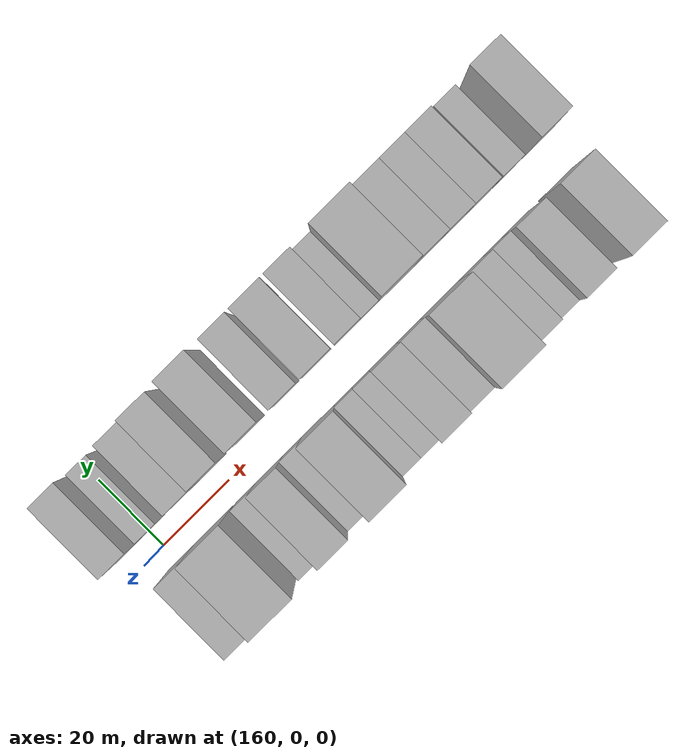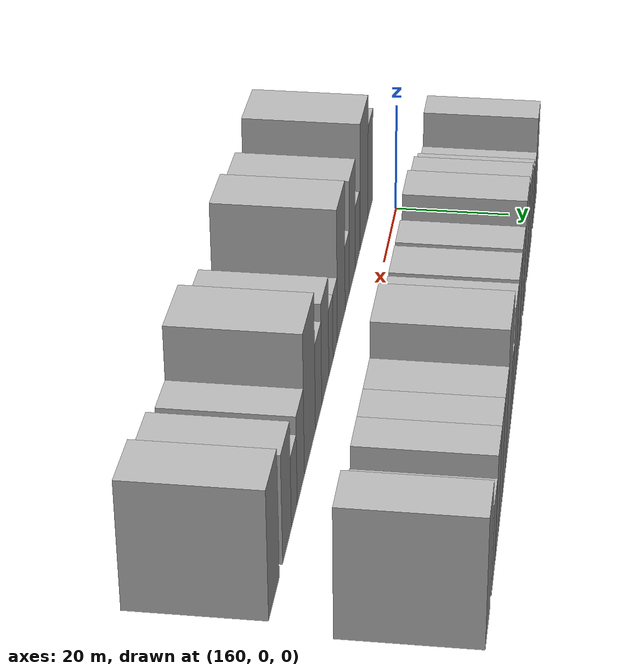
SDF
<sdf version="1.6">
 <world name="default">
  <model name="building_14">
   <static>1</static>
   <pose>154.4987 14.5000 0 0.000000 0.000000 1.570796</pose>
   <link name="link">
    <pose>0 0 9.00 0 0 0</pose>
    <collision name="collision"><geometry><box><size>20.0000 7.2774 18.0000</size></box></geometry></collision>
    <visual name="visual">
     <cast_shadows>0</cast_shadows>
     <geometry><box><size>20.0000 7.2774 18.0000</size></box></geometry>
     <material>
      <script>
       <uri>model://HANNAS_wall/materials/scripts</uri>
       <uri>model://HANNAS_wall/materials/textures</uri>
       <name>vrc/HANNAS_wall</name>
      </script>
     </material>
    </visual>
   </link>
  </model>
  <model name="building_15">
   <static>1</static>
   <pose>162.0869 14.5000 0 0.000000 0.000000 1.570796</pose>
   <link name="link">
    <pose>0 0 6.00 0 0 0</pose>
    <collision name="collision"><geometry><box><size>20.0000 5.8990 12.0000</size></box></geometry></collision>
    <visual name="visual">
     <cast_shadows>0</cast_shadows>
     <geometry><box><size>20.0000 5.8990 12.0000</size></box></geometry>
     <material>
      <script>
       <uri>model://HANNAS_wall/materials/scripts</uri>
       <uri>model://HANNAS_wall/materials/textures</uri>
       <name>vrc/HANNAS_wall</name>
      </script>
     </material>
    </visual>
   </link>
  </model>
  <model name="building_16">
   <static>1</static>
   <pose>171.7738 14.5000 0 0.000000 0.000000 1.570796</pose>
   <link name="link">
    <pose>0 0 7.50 0 0 0</pose>
    <collision name="collision"><geometry><box><size>20.0000 7.4748 15.0000</size></box></geometry></collision>
    <visual name="visual">
     <cast_shadows>0</cast_shadows>
     <geometry><box><size>20.0000 7.4748 15.0000</size></box></geometry>
     <material>
      <script>
       <uri>model://HANNAS_wall/materials/scripts</uri>
       <uri>model://HANNAS_wall/materials/textures</uri>
       <name>vrc/HANNAS_wall</name>
      </script>
     </material>
    </visual>
   </link>
  </model>
  <model name="building_17">
   <static>1</static>
   <pose>179.6057 14.5000 0 0.000000 0.000000 1.570796</pose>
   <link name="link">
    <pose>0 0 9.00 0 0 0</pose>
    <collision name="collision"><geometry><box><size>20.0000 8.1891 18.0000</size></box></geometry></collision>
    <visual name="visual">
     <cast_shadows>0</cast_shadows>
     <geometry><box><size>20.0000 8.1891 18.0000</size></box></geometry>
     <material>
      <script>
       <uri>model://HANNAS_wall/materials/scripts</uri>
       <uri>model://HANNAS_wall/materials/textures</uri>
       <name>vrc/HANNAS_wall</name>
      </script>
     </material>
    </visual>
   </link>
  </model>
  <model name="building_18">
   <static>1</static>
   <pose>191.0919 14.5000 0 0.000000 0.000000 1.570796</pose>
   <link name="link">
    <pose>0 0 10.50 0 0 0</pose>
    <collision name="collision"><geometry><box><size>20.0000 8.7832 21.0000</size></box></geometry></collision>
    <visual name="visual">
     <cast_shadows>0</cast_shadows>
     <geometry><box><size>20.0000 8.7832 21.0000</size></box></geometry>
     <material>
      <script>
       <uri>model://HANNAS_wall/materials/scripts</uri>
       <uri>model://HANNAS_wall/materials/textures</uri>
       <name>vrc/HANNAS_wall</name>
      </script>
     </material>
    </visual>
   </link>
  </model>
  <model name="building_19">
   <static>1</static>
   <pose>202.3033 14.5000 0 0.000000 0.000000 1.570796</pose>
   <link name="link">
    <pose>0 0 9.00 0 0 0</pose>
    <collision name="collision"><geometry><box><size>20.0000 7.6396 18.0000</size></box></geometry></collision>
    <visual name="visual">
     <cast_shadows>0</cast_shadows>
     <geometry><box><size>20.0000 7.6396 18.0000</size></box></geometry>
     <material>
      <script>
       <uri>model://HANNAS_wall/materials/scripts</uri>
       <uri>model://HANNAS_wall/materials/textures</uri>
       <name>vrc/HANNAS_wall</name>
      </script>
     </material>
    </visual>
   </link>
  </model>
  <model name="building_20">
   <static>1</static>
   <pose>211.5195 14.5000 0 0.000000 0.000000 1.570796</pose>
   <link name="link">
    <pose>0 0 9.00 0 0 0</pose>
    <collision name="collision"><geometry><box><size>20.0000 8.7927 18.0000</size></box></geometry></collision>
    <visual name="visual">
     <cast_shadows>0</cast_shadows>
     <geometry><box><size>20.0000 8.7927 18.0000</size></box></geometry>
     <material>
      <script>
       <uri>model://HANNAS_wall/materials/scripts</uri>
       <uri>model://HANNAS_wall/materials/textures</uri>
       <name>vrc/HANNAS_wall</name>
      </script>
     </material>
    </visual>
   </link>
  </model>
  <model name="building_21">
   <static>1</static>
   <pose>220.6847 14.5000 0 0.000000 0.000000 1.570796</pose>
   <link name="link">
    <pose>0 0 9.00 0 0 0</pose>
    <collision name="collision"><geometry><box><size>20.0000 7.5377 18.0000</size></box></geometry></collision>
    <visual name="visual">
     <cast_shadows>0</cast_shadows>
     <geometry><box><size>20.0000 7.5377 18.0000</size></box></geometry>
     <material>
      <script>
       <uri>model://HANNAS_wall/materials/scripts</uri>
       <uri>model://HANNAS_wall/materials/textures</uri>
       <name>vrc/HANNAS_wall</name>
      </script>
     </material>
    </visual>
   </link>
  </model>
  <model name="building_22">
   <static>1</static>
   <pose>227.1869 14.5000 0 0.000000 0.000000 1.570796</pose>
   <link name="link">
    <pose>0 0 6.00 0 0 0</pose>
    <collision name="collision"><geometry><box><size>20.0000 5.4667 12.0000</size></box></geometry></collision>
    <visual name="visual">
     <cast_shadows>0</cast_shadows>
     <geometry><box><size>20.0000 5.4667 12.0000</size></box></geometry>
     <material>
      <script>
       <uri>model://HANNAS_wall/materials/scripts</uri>
       <uri>model://HANNAS_wall/materials/textures</uri>
       <name>vrc/HANNAS_wall</name>
      </script>
     </material>
    </visual>
   </link>
  </model>
  <model name="building_23">
   <static>1</static>
   <pose>235.5753 14.5000 0 0.000000 0.000000 1.570796</pose>
   <link name="link">
    <pose>0 0 12.00 0 0 0</pose>
    <collision name="collision"><geometry><box><size>20.0000 11.3102 24.0000</size></box></geometry></collision>
    <visual name="visual">
     <cast_shadows>0</cast_shadows>
     <geometry><box><size>20.0000 11.3102 24.0000</size></box></geometry>
     <material>
      <script>
       <uri>model://HANNAS_wall/materials/scripts</uri>
       <uri>model://HANNAS_wall/materials/textures</uri>
       <name>vrc/HANNAS_wall</name>
      </script>
     </material>
    </visual>
   </link>
  </model>
  <model name="building_24">
   <static>1</static>
   <pose>245.4057 14.5000 0 0.000000 0.000000 1.570796</pose>
   <link name="link">
    <pose>0 0 9.00 0 0 0</pose>
    <collision name="collision"><geometry><box><size>20.0000 8.3506 18.0000</size></box></geometry></collision>
    <visual name="visual">
     <cast_shadows>0</cast_shadows>
     <geometry><box><size>20.0000 8.3506 18.0000</size></box></geometry>
     <material>
      <script>
       <uri>model://HANNAS_wall/materials/scripts</uri>
       <uri>model://HANNAS_wall/materials/textures</uri>
       <name>vrc/HANNAS_wall</name>
      </script>
     </material>
    </visual>
   </link>
  </model>
  <model name="building_25">
   <static>1</static>
   <pose>253.2059 14.5000 0 0.000000 0.000000 1.570796</pose>
   <link name="link">
    <pose>0 0 9.00 0 0 0</pose>
    <collision name="collision"><geometry><box><size>20.0000 7.2497 18.0000</size></box></geometry></collision>
    <visual name="visual">
     <cast_shadows>0</cast_shadows>
     <geometry><box><size>20.0000 7.2497 18.0000</size></box></geometry>
     <material>
      <script>
       <uri>model://HANNAS_wall/materials/scripts</uri>
       <uri>model://HANNAS_wall/materials/textures</uri>
       <name>vrc/HANNAS_wall</name>
      </script>
     </material>
    </visual>
   </link>
  </model>
  <model name="building_26">
   <static>1</static>
   <pose>260.5482 14.5000 0 0.000000 0.000000 1.570796</pose>
   <link name="link">
    <pose>0 0 9.00 0 0 0</pose>
    <collision name="collision"><geometry><box><size>20.0000 7.4349 18.0000</size></box></geometry></collision>
    <visual name="visual">
     <cast_shadows>0</cast_shadows>
     <geometry><box><size>20.0000 7.4349 18.0000</size></box></geometry>
     <material>
      <script>
       <uri>model://HANNAS_wall/materials/scripts</uri>
       <uri>model://HANNAS_wall/materials/textures</uri>
       <name>vrc/HANNAS_wall</name>
      </script>
     </material>
    </visual>
   </link>
  </model>
  <model name="building_27">
   <static>1</static>
   <pose>268.3773 14.5000 0 0.000000 0.000000 1.570796</pose>
   <link name="link">
    <pose>0 0 7.50 0 0 0</pose>
    <collision name="collision"><geometry><box><size>20.0000 6.2233 15.0000</size></box></geometry></collision>
    <visual name="visual">
     <cast_shadows>0</cast_shadows>
     <geometry><box><size>20.0000 6.2233 15.0000</size></box></geometry>
     <material>
      <script>
       <uri>model://HANNAS_wall/materials/scripts</uri>
       <uri>model://HANNAS_wall/materials/textures</uri>
       <name>vrc/HANNAS_wall</name>
      </script>
     </material>
    </visual>
   </link>
  </model>
  <model name="building_28">
   <static>1</static>
   <pose>278.7567 14.5000 0 0.000000 0.000000 1.570796</pose>
   <link name="link">
    <pose>0 0 10.50 0 0 0</pose>
    <collision name="collision"><geometry><box><size>20.0000 8.5353 21.0000</size></box></geometry></collision>
    <visual name="visual">
     <cast_shadows>0</cast_shadows>
     <geometry><box><size>20.0000 8.5353 21.0000</size></box></geometry>
     <material>
      <script>
       <uri>model://HANNAS_wall/materials/scripts</uri>
       <uri>model://HANNAS_wall/materials/textures</uri>
       <name>vrc/HANNAS_wall</name>
      </script>
     </material>
    </visual>
   </link>
  </model>
  <model name="building_44">
   <static>1</static>
   <pose>161.1236 -14.5000 0 0.000000 0.000000 1.570796</pose>
   <link name="link">
    <pose>0 0 9.00 0 0 0</pose>
    <collision name="collision"><geometry><box><size>20.0000 7.5992 18.0000</size></box></geometry></collision>
    <visual name="visual">
     <cast_shadows>0</cast_shadows>
     <geometry><box><size>20.0000 7.5992 18.0000</size></box></geometry>
     <material>
      <script>
       <uri>model://HANNAS_wall/materials/scripts</uri>
       <uri>model://HANNAS_wall/materials/textures</uri>
       <name>vrc/HANNAS_wall</name>
      </script>
     </material>
    </visual>
   </link>
  </model>
  <model name="building_45">
   <static>1</static>
   <pose>170.8126 -14.5000 0 0.000000 0.000000 1.570796</pose>
   <link name="link">
    <pose>0 0 12.00 0 0 0</pose>
    <collision name="collision"><geometry><box><size>20.0000 11.7789 24.0000</size></box></geometry></collision>
    <visual name="visual">
     <cast_shadows>0</cast_shadows>
     <geometry><box><size>20.0000 11.7789 24.0000</size></box></geometry>
     <material>
      <script>
       <uri>model://HANNAS_wall/materials/scripts</uri>
       <uri>model://HANNAS_wall/materials/textures</uri>
       <name>vrc/HANNAS_wall</name>
      </script>
     </material>
    </visual>
   </link>
  </model>
  <model name="building_46">
   <static>1</static>
   <pose>180.6205 -14.5000 0 0.000000 0.000000 1.570796</pose>
   <link name="link">
    <pose>0 0 6.00 0 0 0</pose>
    <collision name="collision"><geometry><box><size>20.0000 5.8368 12.0000</size></box></geometry></collision>
    <visual name="visual">
     <cast_shadows>0</cast_shadows>
     <geometry><box><size>20.0000 5.8368 12.0000</size></box></geometry>
     <material>
      <script>
       <uri>model://HANNAS_wall/materials/scripts</uri>
       <uri>model://HANNAS_wall/materials/textures</uri>
       <name>vrc/HANNAS_wall</name>
      </script>
     </material>
    </visual>
   </link>
  </model>
  <model name="building_47">
   <static>1</static>
   <pose>187.7438 -14.5000 0 0.000000 0.000000 1.570796</pose>
   <link name="link">
    <pose>0 0 10.50 0 0 0</pose>
    <collision name="collision"><geometry><box><size>20.0000 8.4099 21.0000</size></box></geometry></collision>
    <visual name="visual">
     <cast_shadows>0</cast_shadows>
     <geometry><box><size>20.0000 8.4099 21.0000</size></box></geometry>
     <material>
      <script>
       <uri>model://HANNAS_wall/materials/scripts</uri>
       <uri>model://HANNAS_wall/materials/textures</uri>
       <name>vrc/HANNAS_wall</name>
      </script>
     </material>
    </visual>
   </link>
  </model>
  <model name="building_48">
   <static>1</static>
   <pose>194.7866 -14.5000 0 0.000000 0.000000 1.570796</pose>
   <link name="link">
    <pose>0 0 6.00 0 0 0</pose>
    <collision name="collision"><geometry><box><size>20.0000 5.6756 12.0000</size></box></geometry></collision>
    <visual name="visual">
     <cast_shadows>0</cast_shadows>
     <geometry><box><size>20.0000 5.6756 12.0000</size></box></geometry>
     <material>
      <script>
       <uri>model://HANNAS_wall/materials/scripts</uri>
       <uri>model://HANNAS_wall/materials/textures</uri>
       <name>vrc/HANNAS_wall</name>
      </script>
     </material>
    </visual>
   </link>
  </model>
  <model name="building_49">
   <static>1</static>
   <pose>202.7221 -14.5000 0 0.000000 0.000000 1.570796</pose>
   <link name="link">
    <pose>0 0 12.00 0 0 0</pose>
    <collision name="collision"><geometry><box><size>20.0000 10.1953 24.0000</size></box></geometry></collision>
    <visual name="visual">
     <cast_shadows>0</cast_shadows>
     <geometry><box><size>20.0000 10.1953 24.0000</size></box></geometry>
     <material>
      <script>
       <uri>model://HANNAS_wall/materials/scripts</uri>
       <uri>model://HANNAS_wall/materials/textures</uri>
       <name>vrc/HANNAS_wall</name>
      </script>
     </material>
    </visual>
   </link>
  </model>
  <model name="building_50">
   <static>1</static>
   <pose>210.4950 -14.5000 0 0.000000 0.000000 1.570796</pose>
   <link name="link">
    <pose>0 0 6.00 0 0 0</pose>
    <collision name="collision"><geometry><box><size>20.0000 5.3507 12.0000</size></box></geometry></collision>
    <visual name="visual">
     <cast_shadows>0</cast_shadows>
     <geometry><box><size>20.0000 5.3507 12.0000</size></box></geometry>
     <material>
      <script>
       <uri>model://HANNAS_wall/materials/scripts</uri>
       <uri>model://HANNAS_wall/materials/textures</uri>
       <name>vrc/HANNAS_wall</name>
      </script>
     </material>
    </visual>
   </link>
  </model>
  <model name="building_51">
   <static>1</static>
   <pose>215.7557 -14.5000 0 0.000000 0.000000 1.570796</pose>
   <link name="link">
    <pose>0 0 6.00 0 0 0</pose>
    <collision name="collision"><geometry><box><size>20.0000 5.1707 12.0000</size></box></geometry></collision>
    <visual name="visual">
     <cast_shadows>0</cast_shadows>
     <geometry><box><size>20.0000 5.1707 12.0000</size></box></geometry>
     <material>
      <script>
       <uri>model://HANNAS_wall/materials/scripts</uri>
       <uri>model://HANNAS_wall/materials/textures</uri>
       <name>vrc/HANNAS_wall</name>
      </script>
     </material>
    </visual>
   </link>
  </model>
  <model name="building_52">
   <static>1</static>
   <pose>222.5331 -14.5000 0 0.000000 0.000000 1.570796</pose>
   <link name="link">
    <pose>0 0 9.00 0 0 0</pose>
    <collision name="collision"><geometry><box><size>20.0000 8.3840 18.0000</size></box></geometry></collision>
    <visual name="visual">
     <cast_shadows>0</cast_shadows>
     <geometry><box><size>20.0000 8.3840 18.0000</size></box></geometry>
     <material>
      <script>
       <uri>model://HANNAS_wall/materials/scripts</uri>
       <uri>model://HANNAS_wall/materials/textures</uri>
       <name>vrc/HANNAS_wall</name>
      </script>
     </material>
    </visual>
   </link>
  </model>
  <model name="building_53">
   <static>1</static>
   <pose>230.2978 -14.5000 0 0.000000 0.000000 1.570796</pose>
   <link name="link">
    <pose>0 0 7.50 0 0 0</pose>
    <collision name="collision"><geometry><box><size>20.0000 7.1454 15.0000</size></box></geometry></collision>
    <visual name="visual">
     <cast_shadows>0</cast_shadows>
     <geometry><box><size>20.0000 7.1454 15.0000</size></box></geometry>
     <material>
      <script>
       <uri>model://HANNAS_wall/materials/scripts</uri>
       <uri>model://HANNAS_wall/materials/textures</uri>
       <name>vrc/HANNAS_wall</name>
      </script>
     </material>
    </visual>
   </link>
  </model>
  <model name="building_54">
   <static>1</static>
   <pose>239.8529 -14.5000 0 0.000000 0.000000 1.570796</pose>
   <link name="link">
    <pose>0 0 12.00 0 0 0</pose>
    <collision name="collision"><geometry><box><size>20.0000 11.9648 24.0000</size></box></geometry></collision>
    <visual name="visual">
     <cast_shadows>0</cast_shadows>
     <geometry><box><size>20.0000 11.9648 24.0000</size></box></geometry>
     <material>
      <script>
       <uri>model://HANNAS_wall/materials/scripts</uri>
       <uri>model://HANNAS_wall/materials/textures</uri>
       <name>vrc/HANNAS_wall</name>
      </script>
     </material>
    </visual>
   </link>
  </model>
  <model name="building_55">
   <static>1</static>
   <pose>249.5660 -14.5000 0 0.000000 0.000000 1.570796</pose>
   <link name="link">
    <pose>0 0 7.50 0 0 0</pose>
    <collision name="collision"><geometry><box><size>20.0000 7.4614 15.0000</size></box></geometry></collision>
    <visual name="visual">
     <cast_shadows>0</cast_shadows>
     <geometry><box><size>20.0000 7.4614 15.0000</size></box></geometry>
     <material>
      <script>
       <uri>model://HANNAS_wall/materials/scripts</uri>
       <uri>model://HANNAS_wall/materials/textures</uri>
       <name>vrc/HANNAS_wall</name>
      </script>
     </material>
    </visual>
   </link>
  </model>
  <model name="building_56">
   <static>1</static>
   <pose>256.2039 -14.5000 0 0.000000 0.000000 1.570796</pose>
   <link name="link">
    <pose>0 0 6.00 0 0 0</pose>
    <collision name="collision"><geometry><box><size>20.0000 5.8143 12.0000</size></box></geometry></collision>
    <visual name="visual">
     <cast_shadows>0</cast_shadows>
     <geometry><box><size>20.0000 5.8143 12.0000</size></box></geometry>
     <material>
      <script>
       <uri>model://HANNAS_wall/materials/scripts</uri>
       <uri>model://HANNAS_wall/materials/textures</uri>
       <name>vrc/HANNAS_wall</name>
      </script>
     </material>
    </visual>
   </link>
  </model>
  <model name="building_57">
   <static>1</static>
   <pose>263.3496 -14.5000 0 0.000000 0.000000 1.570796</pose>
   <link name="link">
    <pose>0 0 9.00 0 0 0</pose>
    <collision name="collision"><geometry><box><size>20.0000 8.4772 18.0000</size></box></geometry></collision>
    <visual name="visual">
     <cast_shadows>0</cast_shadows>
     <geometry><box><size>20.0000 8.4772 18.0000</size></box></geometry>
     <material>
      <script>
       <uri>model://HANNAS_wall/materials/scripts</uri>
       <uri>model://HANNAS_wall/materials/textures</uri>
       <name>vrc/HANNAS_wall</name>
      </script>
     </material>
    </visual>
   </link>
  </model>
  <model name="building_58">
   <static>1</static>
   <pose>275.4524 -14.5000 0 0.000000 0.000000 1.570796</pose>
   <link name="link">
    <pose>0 0 10.50 0 0 0</pose>
    <collision name="collision"><geometry><box><size>20.0000 9.7284 21.0000</size></box></geometry></collision>
    <visual name="visual">
     <cast_shadows>0</cast_shadows>
     <geometry><box><size>20.0000 9.7284 21.0000</size></box></geometry>
     <material>
      <script>
       <uri>model://HANNAS_wall/materials/scripts</uri>
       <uri>model://HANNAS_wall/materials/textures</uri>
       <name>vrc/HANNAS_wall</name>
      </script>
     </material>
    </visual>
   </link>
  </model>
 </world>
</sdf>
